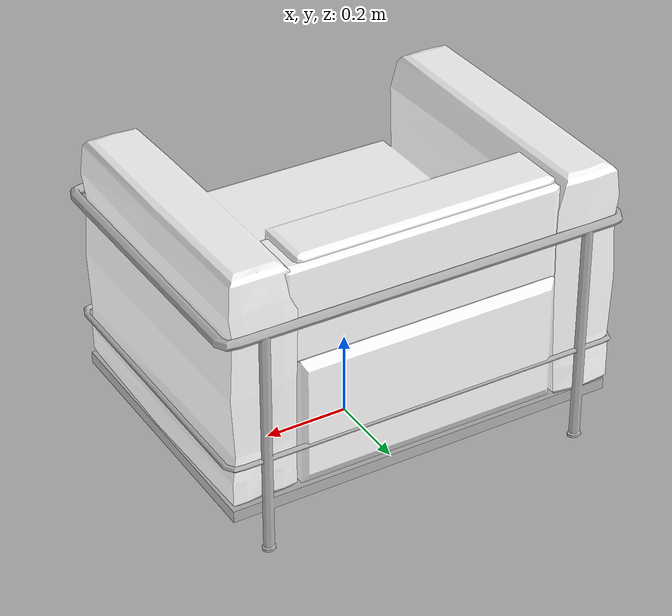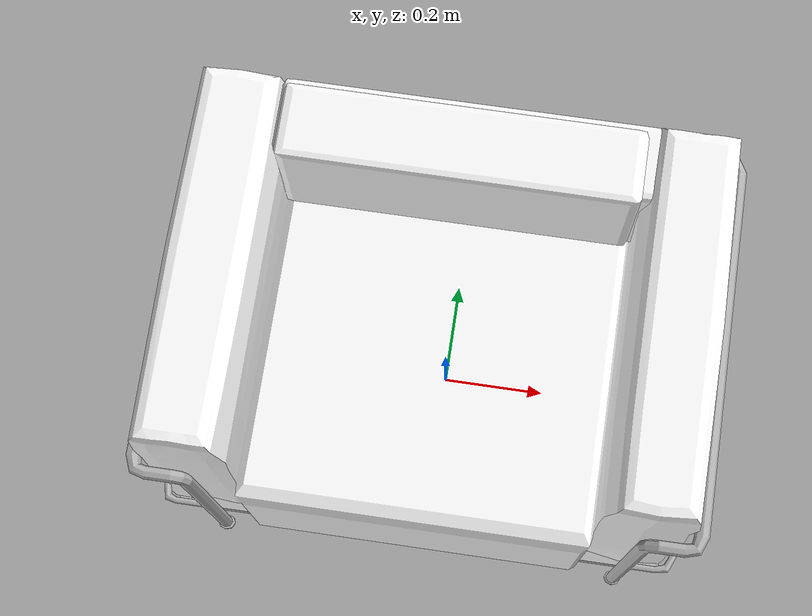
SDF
<?xml version='1.0'?>
<sdf version='1.6'>
  <model name='chair_set_1'>
    <link name='link_16'>
      <pose frame=''>0.07217 0.114259 -0.032065 0 -0 1.57</pose>
      <self_collide>0</self_collide>
      <kinematic>0</kinematic>
      <visual name='visual'>
        <pose frame=''>0 0 0 0 -0 0</pose>
        <geometry>
          <mesh>
            <uri>model://chair_set_1/meshes/chair_frame.dae</uri>
            <scale>1 1 1</scale>
          </mesh>
        </geometry>
        <material>
          <lighting>1</lighting>
          <ambient>0.3 0.3 0.3 1</ambient>
          <diffuse>0.7 0.7 0.7 1</diffuse>
          <specular>0.01 0.01 0.01 1</specular>
          <emissive>0 0 0 1</emissive>
          <shader type='vertex'>
            <normal_map>__default__</normal_map>
          </shader>
          <script>
            <name>ModelPreview_14::link_16::visual_MATERIAL_</name>
            <uri>__default__</uri>
          </script>
        </material>
        <cast_shadows>1</cast_shadows>
        <transparency>0</transparency>
      </visual>
      <collision name='collision'>
        <laser_retro>0</laser_retro>
        <max_contacts>10</max_contacts>
        <pose frame=''>0 0 0 0 -0 0</pose>
        <geometry>
          <mesh>
            <uri>/home/ee106a-student/gazebo_models_worlds_collection/models/chair_set_1/meshes/chair_frame.dae</uri>
            <scale>1 1 1</scale>
          </mesh>
        </geometry>
        <surface>
          <friction>
            <ode>
              <mu>1</mu>
              <mu2>1</mu2>
              <fdir1>0 0 0</fdir1>
              <slip1>0</slip1>
              <slip2>0</slip2>
            </ode>
            <torsional>
              <coefficient>1</coefficient>
              <patch_radius>0</patch_radius>
              <surface_radius>0</surface_radius>
              <use_patch_radius>1</use_patch_radius>
              <ode>
                <slip>0</slip>
              </ode>
            </torsional>
          </friction>
          <bounce>
            <restitution_coefficient>0</restitution_coefficient>
            <threshold>1e+06</threshold>
          </bounce>
          <contact>
            <collide_without_contact>0</collide_without_contact>
            <collide_without_contact_bitmask>1</collide_without_contact_bitmask>
            <collide_bitmask>1</collide_bitmask>
            <ode>
              <soft_cfm>0</soft_cfm>
              <soft_erp>0.2</soft_erp>
              <kp>1e+13</kp>
              <kd>1</kd>
              <max_vel>0.01</max_vel>
              <min_depth>0</min_depth>
            </ode>
            <bullet>
              <split_impulse>1</split_impulse>
              <split_impulse_penetration_threshold>-0.01</split_impulse_penetration_threshold>
              <soft_cfm>0</soft_cfm>
              <soft_erp>0.2</soft_erp>
              <kp>1e+13</kp>
              <kd>1</kd>
            </bullet>
          </contact>
        </surface>
      </collision>
    </link>
    <link name='link_17'>
      <pose frame=''>0.069192 0.1237 -0.032065 0 -0 1.57</pose>
      <self_collide>0</self_collide>
      <kinematic>0</kinematic>
      <visual name='visual'>
        <pose frame=''>0 0 0 0 -0 0</pose>
        <geometry>
          <mesh>
            <uri>model://chair_set_1/meshes/chair_cushions.dae</uri>
            <scale>1 1 1</scale>
          </mesh>
        </geometry>
        <material>
          <script>
            <uri>model://chair_set_1/materials/scripts</uri>
            <uri>model://chair_set_1/materials/textures</uri>
            <name>chair_set_1</name>
          </script>
          <shader type='pixel'/>
          <ambient>1 1 1 1</ambient>
          <diffuse>1 1 1 1</diffuse>
          <specular>0 0 0 1</specular>
          <emissive>0 0 0 1</emissive>
        </material>
        <cast_shadows>1</cast_shadows>
        <transparency>0</transparency>
      </visual>
      <collision name='collision'>
        <laser_retro>0</laser_retro>
        <max_contacts>10</max_contacts>
        <pose frame=''>0 0 0 0 -0 0</pose>
        <geometry>
          <mesh>
            <uri>/home/ee106a-student/gazebo_models_worlds_collection/models/chair_set_1/meshes/chair_cushions.dae</uri>
            <scale>1 1 1</scale>
          </mesh>
        </geometry>
        <surface>
          <friction>
            <ode>
              <mu>1</mu>
              <mu2>1</mu2>
              <fdir1>0 0 0</fdir1>
              <slip1>0</slip1>
              <slip2>0</slip2>
            </ode>
            <torsional>
              <coefficient>1</coefficient>
              <patch_radius>0</patch_radius>
              <surface_radius>0</surface_radius>
              <use_patch_radius>1</use_patch_radius>
              <ode>
                <slip>0</slip>
              </ode>
            </torsional>
          </friction>
          <bounce>
            <restitution_coefficient>0</restitution_coefficient>
            <threshold>1e+06</threshold>
          </bounce>
          <contact>
            <collide_without_contact>0</collide_without_contact>
            <collide_without_contact_bitmask>1</collide_without_contact_bitmask>
            <collide_bitmask>1</collide_bitmask>
            <ode>
              <soft_cfm>0</soft_cfm>
              <soft_erp>0.2</soft_erp>
              <kp>1e+13</kp>
              <kd>1</kd>
              <max_vel>0.01</max_vel>
              <min_depth>0</min_depth>
            </ode>
            <bullet>
              <split_impulse>1</split_impulse>
              <split_impulse_penetration_threshold>-0.01</split_impulse_penetration_threshold>
              <soft_cfm>0</soft_cfm>
              <soft_erp>0.2</soft_erp>
              <kp>1e+13</kp>
              <kd>1</kd>
            </bullet>
          </contact>
        </surface>
      </collision>
    </link>
    <link name='link_18'>
      <pose frame=''>0.606963 -0.367766 -0.032065 0 -0 0</pose>
      <self_collide>0</self_collide>
      <kinematic>0</kinematic>
      <visual name='visual'>
        <pose frame=''>0 0 0 0 -0 0</pose>
        <geometry>
          <mesh>
            <uri>model://chair_set_1/meshes/sofa_cushions_back.dae</uri>
            <scale>1 1 1</scale>
          </mesh>
        </geometry>
        <material>
          <script>
            <uri>model://chair_set_1/materials/scripts</uri>
            <uri>model://chair_set_1/materials/textures</uri>
            <name>chair_set_1</name>
          </script>
          <shader type='pixel'/>
          <ambient>1 1 1 1</ambient>
          <diffuse>1 1 1 1</diffuse>
          <specular>0 0 0 1</specular>
          <emissive>0 0 0 1</emissive>
        </material>
        <cast_shadows>1</cast_shadows>
        <transparency>0</transparency>
      </visual>
      <collision name='collision'>
        <laser_retro>0</laser_retro>
        <max_contacts>10</max_contacts>
        <pose frame=''>0 0 0 0 -0 0</pose>
        <geometry>
          <mesh>
            <uri>/home/ee106a-student/gazebo_models_worlds_collection/models/chair_set_1/meshes/sofa_cushions_back.dae</uri>
            <scale>1 1 1</scale>
          </mesh>
        </geometry>
        <surface>
          <friction>
            <ode>
              <mu>1</mu>
              <mu2>1</mu2>
              <fdir1>0 0 0</fdir1>
              <slip1>0</slip1>
              <slip2>0</slip2>
            </ode>
            <torsional>
              <coefficient>1</coefficient>
              <patch_radius>0</patch_radius>
              <surface_radius>0</surface_radius>
              <use_patch_radius>1</use_patch_radius>
              <ode>
                <slip>0</slip>
              </ode>
            </torsional>
          </friction>
          <bounce>
            <restitution_coefficient>0</restitution_coefficient>
            <threshold>1e+06</threshold>
          </bounce>
          <contact>
            <collide_without_contact>0</collide_without_contact>
            <collide_without_contact_bitmask>1</collide_without_contact_bitmask>
            <collide_bitmask>1</collide_bitmask>
            <ode>
              <soft_cfm>0</soft_cfm>
              <soft_erp>0.2</soft_erp>
              <kp>1e+13</kp>
              <kd>1</kd>
              <max_vel>0.01</max_vel>
              <min_depth>0</min_depth>
            </ode>
            <bullet>
              <split_impulse>1</split_impulse>
              <split_impulse_penetration_threshold>-0.01</split_impulse_penetration_threshold>
              <soft_cfm>0</soft_cfm>
              <soft_erp>0.2</soft_erp>
              <kp>1e+13</kp>
              <kd>1</kd>
            </bullet>
          </contact>
        </surface>
      </collision>
    </link>
    <static>1</static>
    <allow_auto_disable>1</allow_auto_disable>
  </model>
</sdf>
